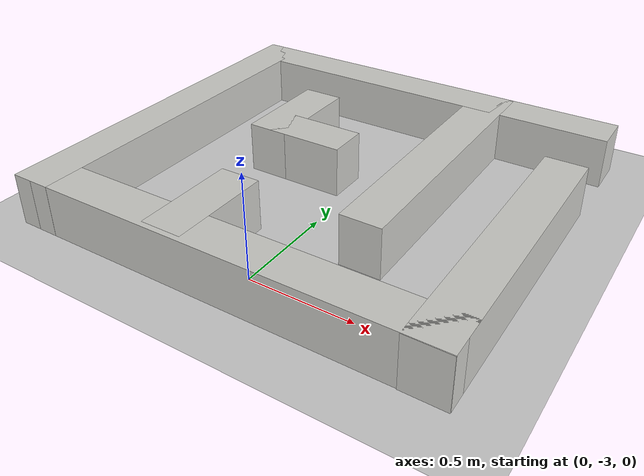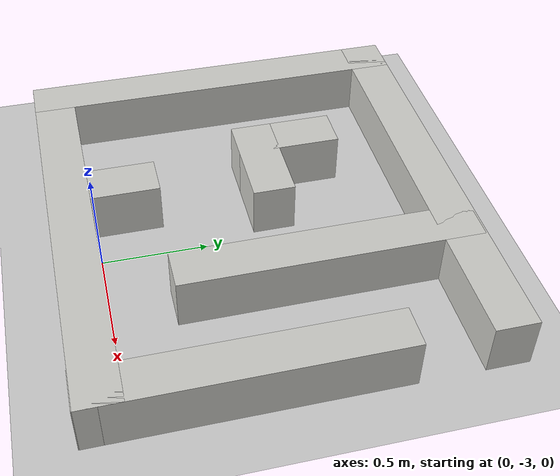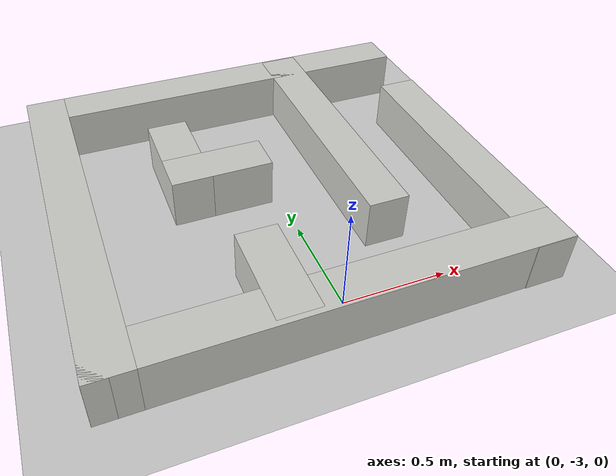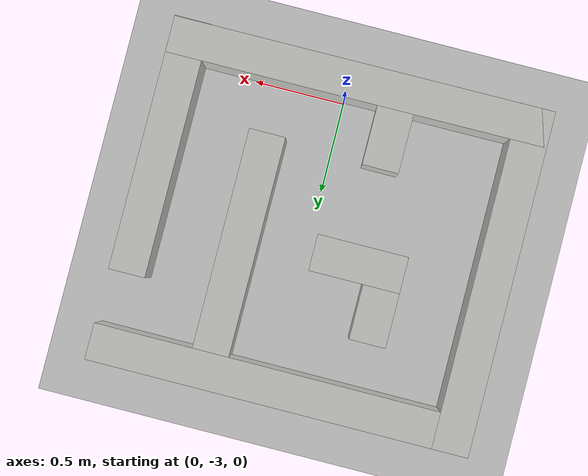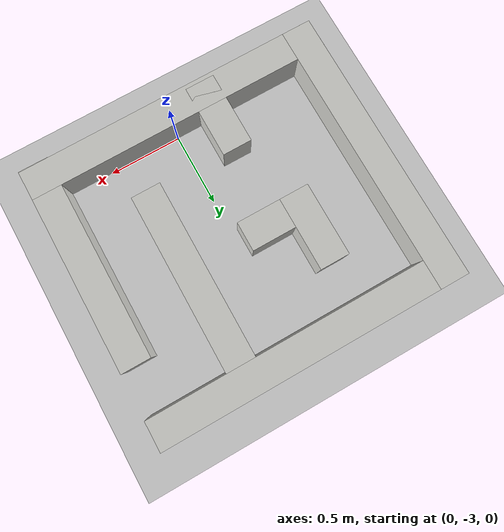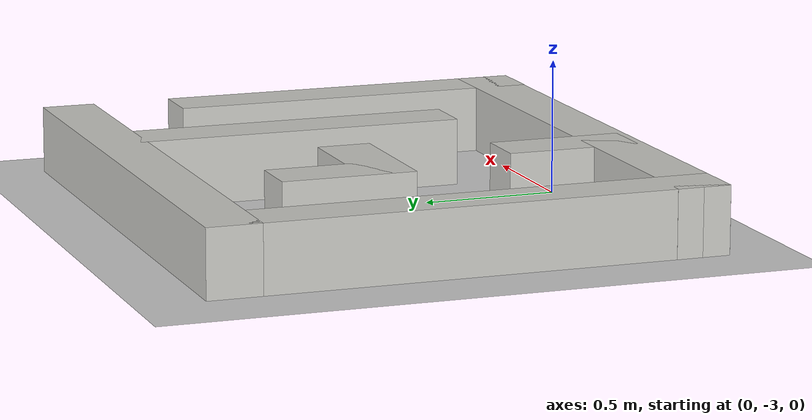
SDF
<sdf version="1.6">
 <world name="default">
  <light name="sun" type="directional">
   <pose>0 0 10 0 -0 0</pose>
   <diffuse>0.8 0.8 0.8 1</diffuse>
   <specular>0.2 0.2 0.2 1</specular>
   <attenuation>
    <range>1000</range>
    <constant>0.9</constant>
    <linear>0.01</linear>
    <quadratic>0.001</quadratic>
   </attenuation>
   <direction>-0.5 0.1 -0.9</direction>
  </light>
  <model name="ground_plane">
   <static>1</static>
   <link name="link">
    <collision name="collision">
     <geometry><plane><normal>0 0 1</normal><size>100 100</size></plane></geometry>
     <surface>
      <contact><collide_bitmask>65535</collide_bitmask></contact>
      <friction><ode><mu>100</mu><mu2>50</mu2></ode></friction>
     </surface>
    </collision>
    <visual name="visual">
     <cast_shadows>0</cast_shadows>
     <geometry><plane><normal>0 0 1</normal><size>100 100</size></plane></geometry>
     <material>
      <script><uri>file://media/materials/scripts/gazebo.material</uri><name>Gazebo/Grey</name></script>
     </material>
    </visual>
   </link>
  </model>
  <gravity>0 0 -9.8</gravity>
  <magnetic_field>6e-06 2.3e-05 -4.2e-05</magnetic_field>
  <atmosphere type="adiabatic"/>
  <physics name="default_physics" default="0" type="ode">
   <max_step_size>0.001</max_step_size>
   <real_time_factor>1</real_time_factor>
   <real_time_update_rate>1000</real_time_update_rate>
  </physics>
  <scene><ambient>0.4 0.4 0.4 1</ambient><background>0.7 0.7 0.7 1</background><shadows>1</shadows></scene>
  <audio><device>default</device></audio>
  <spherical_coordinates>
   <surface_model>EARTH_WGS84</surface_model>
   <latitude_deg>0</latitude_deg>
   <longitude_deg>0</longitude_deg>
   <elevation>0</elevation>
   <heading_deg>0</heading_deg>
  </spherical_coordinates>
  <model name="mazeGopigo3">
   <pose>-0.06 -2.26017 0 0 -0 0</pose>
   <link name="Wall_0">
    <collision name="Wall_0_Collision">
     <geometry><box><size>2.1 0.2 0.25</size></box></geometry>
     <pose>0 0 0.125 0 -0 0</pose>
    </collision>
    <visual name="Wall_0_Visual">
     <pose>0 0 0.125 0 -0 0</pose>
     <geometry><box><size>2.1 0.2 0.25</size></box></geometry>
     <material>
      <script><uri>file://media/materials/scripts/gazebo.material</uri><name>Gazebo/CeilingTiled</name></script>
      <ambient>1 0.764706 0.305882 1</ambient>
     </material>
     <meta><layer>0</layer></meta>
    </visual>
    <pose>-0 0.850173 0 0 -0 3.14159</pose>
   </link>
   <link name="Wall_1">
    <collision name="Wall_1_Collision">
     <geometry><box><size>1.9 0.2 0.25</size></box></geometry>
     <pose>0 0 0.125 0 -0 0</pose>
    </collision>
    <visual name="Wall_1_Visual">
     <pose>0 0 0.125 0 -0 0</pose>
     <geometry><box><size>1.9 0.2 0.25</size></box></geometry>
     <material>
      <script><uri>file://media/materials/scripts/gazebo.material</uri><name>Gazebo/CeilingTiled</name></script>
      <ambient>1 0.764706 0.305882 1</ambient>
     </material>
     <meta><layer>0</layer></meta>
    </visual>
    <pose>-0.95 0.000173 0 0 -0 -1.5708</pose>
   </link>
   <link name="Wall_10">
    <collision name="Wall_10_Collision">
     <geometry><box><size>0.5 0.2 0.25</size></box></geometry>
     <pose>0 0 0.125 0 -0 0</pose>
    </collision>
    <visual name="Wall_10_Visual">
     <pose>0 0 0.125 0 -0 0</pose>
     <geometry><box><size>0.5 0.2 0.25</size></box></geometry>
     <material>
      <script><uri>file://media/materials/scripts/gazebo.material</uri><name>Gazebo/CeilingTiled</name></script>
      <ambient>1 0.764706 0.305882 1</ambient>
     </material>
     <meta><layer>0</layer></meta>
    </visual>
    <pose>-0.232837 0.097317 0 0 -0 0</pose>
   </link>
   <link name="Wall_12">
    <collision name="Wall_12_Collision">
     <geometry><box><size>0.5 0.2 0.25</size></box></geometry>
     <pose>0 0 0.125 0 -0 0</pose>
    </collision>
    <visual name="Wall_12_Visual">
     <pose>0 0 0.125 0 -0 0</pose>
     <geometry><box><size>0.5 0.2 0.25</size></box></geometry>
     <material>
      <script><uri>file://media/materials/scripts/gazebo.material</uri><name>Gazebo/CeilingTiled</name></script>
      <ambient>1 0.764706 0.305882 1</ambient>
     </material>
     <meta><layer>0</layer></meta>
    </visual>
    <pose>-0.219097 -0.670893 0 0 -0 1.5708</pose>
   </link>
   <link name="Wall_2">
    <collision name="Wall_2_Collision">
     <geometry><box><size>2.1 0.2 0.25</size></box></geometry>
     <pose>0 0 0.125 0 -0 0</pose>
    </collision>
    <visual name="Wall_2_Visual">
     <pose>0 0 0.125 0 -0 0</pose>
     <geometry><box><size>2.1 0.2 0.25</size></box></geometry>
     <material>
      <script><uri>file://media/materials/scripts/gazebo.material</uri><name>Gazebo/CeilingTiled</name></script>
      <ambient>1 0.764706 0.305882 1</ambient>
     </material>
     <meta><layer>0</layer></meta>
    </visual>
    <pose>-0 -0.84654 0 0 -0 0.003461</pose>
   </link>
   <link name="Wall_3">
    <collision name="Wall_3_Collision">
     <geometry><box><size>1.4 0.2 0.25</size></box></geometry>
     <pose>0 0 0.125 0 -0 0</pose>
    </collision>
    <visual name="Wall_3_Visual">
     <pose>0 0 0.125 0 -0 0</pose>
     <geometry><box><size>1.4 0.2 0.25</size></box></geometry>
     <material>
      <script><uri>file://media/materials/scripts/gazebo.material</uri><name>Gazebo/CeilingTiled</name></script>
      <ambient>1 0.764706 0.305882 1</ambient>
     </material>
     <meta><layer>0</layer></meta>
    </visual>
    <pose>0.95 -0.24654 0 0 -0 1.5708</pose>
   </link>
   <link name="Wall_5">
    <collision name="Wall_5_Collision">
     <geometry><box><size>1.4 0.2 0.25</size></box></geometry>
     <pose>0 0 0.125 0 -0 0</pose>
    </collision>
    <visual name="Wall_5_Visual">
     <pose>0 0 0.125 0 -0 0</pose>
     <geometry><box><size>1.4 0.2 0.25</size></box></geometry>
     <material>
      <script><uri>file://media/materials/scripts/gazebo.material</uri><name>Gazebo/CeilingTiled</name></script>
      <ambient>1 0.764706 0.305882 1</ambient>
     </material>
     <meta><layer>0</layer></meta>
    </visual>
    <pose>0.412 0.242173 0 0 -0 -1.5708</pose>
   </link>
   <link name="Wall_7">
    <collision name="Wall_7_Collision">
     <geometry><box><size>0.5 0.2 0.25</size></box></geometry>
     <pose>0 0 0.125 0 -0 0</pose>
    </collision>
    <visual name="Wall_7_Visual">
     <pose>0 0 0.125 0 -0 0</pose>
     <geometry><box><size>0.5 0.2 0.25</size></box></geometry>
     <material>
      <script><uri>file://media/materials/scripts/gazebo.material</uri><name>Gazebo/CeilingTiled</name></script>
      <ambient>1 0.764706 0.305882 1</ambient>
     </material>
     <meta><layer>0</layer></meta>
    </visual>
    <pose>-0.382837 0.247316 0 0 -0 -1.5708</pose>
   </link>
   <static>1</static>
  </model>
 </world>
</sdf>
